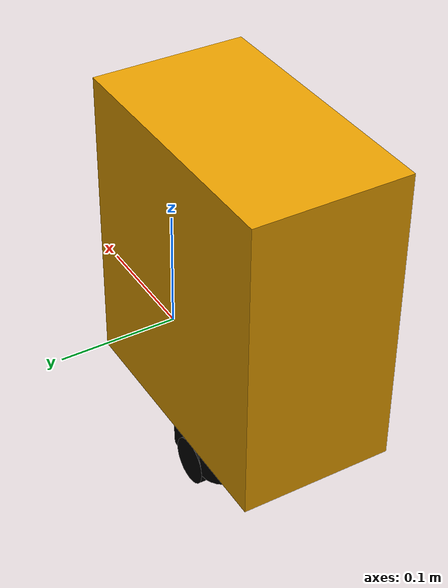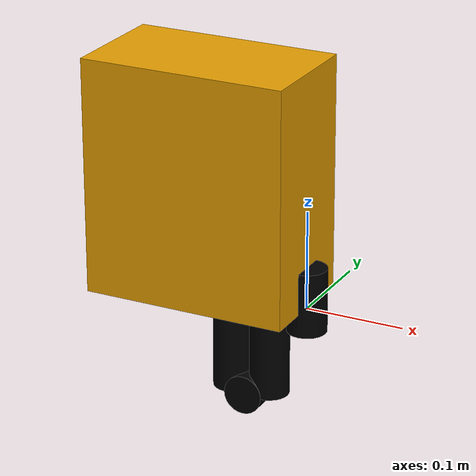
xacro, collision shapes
<?xml version="1.0"?>
<robot name="reach5mini" xmlns:xacro="http://ros.org/wiki/xacro">
  <xacro:arg name="gazebo" default="false"/>
  <xacro:include filename="$(find reach5mini_simulation)/urdf/reach5mini.urdf.xacro" />
  <link name="base_link" >
    <visual>
        <geometry>
            <box size="0.210 0.120 0.240" />
        </geometry>
        <origin rpy="0 0 0" xyz="-0.105 0 0.120" />
    </visual>
    <collision>
      <geometry>
          <box size="0.210 0.120 0.240" />
      </geometry>
      <origin rpy="0 0 0" xyz="-0.105 0 0.120" />
      <surface>
        <friction>
          <ode>
            <mu>0.1</mu>
            <mu2>0.1</mu2>
          </ode>
        </friction>
      </surface>
    </collision>
    <inertial>
        <mass value="5" />
        <origin rpy="0 0 0" xyz="-0.105 0 0.120" />
        <inertia ixx="0.001" ixy="0.00015" ixz="0.0001054" iyy="0.000213" iyz="0.0001003" izz="0.0001067" />
    </inertial>
  </link>

  <reach5mini parent="base_link" name="r5m">
    <origin xyz="0 0 0" rpy="0 0 0"/>
  </reach5mini>
</robot>

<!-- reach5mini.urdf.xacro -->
<robot name="reach5mini" xmlns:xacro="http://ros.org/wiki/xacro">
  <xacro:arg name="gazebo" default="false"/>
  <xacro:arg name="fixed" default="false"/>

  <xacro:if value="$(arg gazebo)">
    <xacro:include filename="$(find reach5mini_simulation)/urdf/reach5mini.gazebo.xacro"/>
  </xacro:if>

  <xacro:macro name="reach5mini" params="parent *origin name:=reach5mini">
    <reach5mini_gazebo name="${name}"/>

    <!-- camera body, with origin at bottom screw mount -->
    <joint name="${name}_joint" type="fixed">
      <xacro:insert_block name="origin" />
      <parent link="${parent}"/>
      <child link="${name}_base_link" />
    </joint>

      <material name="black">
          <color rgba="0 0 0 1" />
      </material>
      <link name="${name}_base_link">
          <visual>
              <geometry>
                  <mesh filename="package://reach5mini_simulation/meshes/Base.stl" />
              </geometry>
              <origin rpy="0 0 0" xyz="0 0 0" />
              <material name="black" />
          </visual>
          <collision>
              <geometry>
                  <cylinder length="0.150" radius="0.020" />
              </geometry>
              <origin rpy="0 1.57075 0" xyz="-0.075 0 0" />
          </collision>

          <inertial>
              <mass value="0.341" />
              <origin xyz="-0.075 -0.006 -0.003" />
              <inertia ixx="0.000099" ixy="0.000139" ixz="0.000115" iyy="0.002920" iyz="0.000003" izz="0.002934" />
          </inertial>

      </link>
      <link name="${name}_shoulder_link">
          <visual>
              <geometry>
                  <mesh filename="package://reach5mini_simulation/meshes/ShoulderJoint.stl" />
              </geometry>
              <material name="black" />
              <origin rpy="0 0 -1.57075" xyz="0 0 0" />
          </visual>
          <collision>
              <geometry>
                  <cylinder length="0.066" radius="0.020" />
              </geometry>
              <origin rpy="0 0 0" xyz="0 0 0.010" />
          </collision>

          <inertial>
              <mass value="0.194" />
              <origin xyz="0.005 -0.001 0.016" />
              <inertia ixx="0.000189" ixy="0.000005" ixz="0.000054" iyy="0.000213" iyz="0.000003" izz="0.000067" />
          </inertial>

      </link>
      <link name="${name}_upper_arm_link">
          <visual>
              <geometry>
                  <mesh filename="package://reach5mini_simulation/meshes/UpperArm.stl" />
              </geometry>
              <origin rpy="0 -1.57075 -0.2655555" xyz="0 0 -0.075" />
              <material name="black" />
          </visual>
          <collision>
              <geometry>
                  <cylinder length="0.145" radius="0.020" />
              </geometry>
              <origin rpy="0 1.57075 -0.27075" xyz="0.075 0 0" />
          </collision>
          <collision>
              <geometry>
                  <cylinder length="0.040" radius="0.020" />
              </geometry>
              <origin rpy="0 0 0" xyz="0 0 0" />
          </collision>
          <inertial>
              <mass value="0.429" />
              <origin xyz="0.073 0.0 0.0" />
              <inertia ixx="0.000087" ixy="-0.000076" ixz="-0.000010" iyy="0.003190" iyz="0.000000" izz="0.003213" />
          </inertial>

      </link>
      <link name="${name}_forearm_link">
          <visual>
              <geometry>
                  <mesh filename="package://reach5mini_simulation/meshes/ForearmJoint.stl" />
              </geometry>
              <origin rpy="0 0 0" xyz="0 0 0" />
              <material name="black" />
          </visual>
          <collision>
              <geometry>
                  <cylinder length="0.040" radius="0.020" />
              </geometry>
              <origin rpy="0 0 0" xyz="0 0 0" />
          </collision>
          <inertial>
              <mass value="0.115" />
              <origin xyz="0.017 -0.026 -0.002" />
              <inertia ixx="0.000120" ixy="-0.000061" ixz="-0.000001" iyy="0.000062" iyz="0.000000" izz="0.000156" />
          </inertial>

      </link>
      <link name="${name}_wrist_link">
          <visual>
              <geometry>
                  <mesh filename="package://reach5mini_simulation/meshes/Wrist.stl" />
              </geometry>
              <origin rpy="0 0 0" xyz="0 0 0" />
              <material name="black" />
          </visual>
          <collision>
              <geometry>
                  <cylinder length="0.140" radius="0.020" />
              </geometry>
              <origin rpy="0 0 0" xyz="0 0 -0.070" />
          </collision>
          <inertial>
              <mass value="0.333" />
              <origin xyz="0.0 0.003 -0.098" />
              <inertia ixx="0.003709" ixy="-0.000002" ixz="-0.000004" iyy="0.003734" iyz="0.000000" izz="0.000079" />
          </inertial>

      </link>
      <link name="${name}_jaw1">
          <visual>
              <geometry>
                  <mesh filename="package://reach5mini_simulation/meshes/Jaw1.stl" />
              </geometry>
              <origin rpy="0 0 0" xyz="0 0 0" />
              <material name="black" />
          </visual>
          <collision>
              <geometry>
                  <box size="0.03 0.09 0.01" />
              </geometry>
              <origin rpy="0 0 0" xyz="-0.01 -0.045 0" />
          </collision>
          <!-- TODO: GET APPROPOATE MASSES - John Sumskas -->
          <inertial>
              <mass value="0.194" />
              <origin xyz="0.005 -0.001 0.016" />
              <inertia ixx="0.000189" ixy="0.000005" ixz="0.000054" iyy="0.000213" iyz="0.000003" izz="0.000067" />
          </inertial>

      </link>
      <link name="${name}_jaw2">
          <visual>
              <geometry>
                  <mesh filename="package://reach5mini_simulation/meshes/Jaw2.stl" />
              </geometry>
              <origin rpy="0 0 0" xyz="0 0 0" />
              <material name="black" />
          </visual>
          <collision>
              <geometry>
                  <box size="0.03 0.09 0.01" />
              </geometry>
              <origin rpy="0 0 0" xyz="0.01 -0.045 0" />
          </collision>
          <!-- TODO: GET APPROPOATE MASSES - John Sumskas -->

          <inertial>
              <mass value="0.194" />
              <origin xyz="0.005 -0.001 0.016" />
              <inertia ixx="0.000189" ixy="0.000005" ixz="0.000054" iyy="0.000213" iyz="0.000003" izz="0.000067" />
          </inertial>
      </link>
      <joint name="${name}_joint1_1" type="revolute">
          <parent link="${name}_wrist_link" />
          <child link="${name}_jaw2" />
          <origin xyz="-0.015 0 -0.140" rpy="1.57075 0 0" />
          <axis xyz="0 0 -1" />
          <limit effort="5.0" lower="0.0" upper="0.5" velocity="0.5" />
      </joint>
      <joint name="${name}_joint1_2" type="revolute">
          <parent link="${name}_wrist_link" />
          <child link="${name}_jaw1" />
          <origin xyz="0.015 0 -0.140" rpy="1.57075 0 0" />
          <axis xyz="0 0 1" />
          <limit effort="5.0" lower="0.0" upper="0.5" velocity="0.5" />
      </joint>

      <joint name="${name}_joint2" type="revolute">
          <parent link="${name}_forearm_link" />
          <child link="${name}_wrist_link" />
          <origin xyz="0.020 0 0" rpy="-1.57075 -0.5 0" />
          <axis xyz="0 0 1" />
          <limit effort="5.0" lower="0.0" upper="6.0" velocity="1.0" />
      </joint>
      <joint name="${name}_joint3" type="revolute">
          <parent link="${name}_upper_arm_link" />
          <child link="${name}_forearm_link" />
          <origin xyz="0.15 0 0" rpy="3.1415 0 1.3" />
          <axis xyz="0 0 1" />
          <limit effort="9.0" lower="0.0" upper="3.5" velocity="0.5" />
      </joint>
      <joint name="${name}_joint4" type="revolute">
          <parent link="${name}_shoulder_link" />
          <child link="${name}_upper_arm_link" />
          <origin xyz="0.020 0 0.046" rpy="1.57075 1.3 0" />
          <axis xyz="0 0 1" />
          <limit effort="9.0" lower="0.0" upper="3.5" velocity="0.5" />
      </joint>
      <joint name="${name}_joint5" type="revolute">
          <parent link="${name}_base_link" />
          <child link="${name}_shoulder_link" />
          <origin xyz="0 0 0" rpy="0 0 3.141592" />
          <axis xyz="0 0 1" />
          <limit effort="9.0" lower="0.0" upper="6.2" velocity="0.5" />
      </joint>

      <link name="${name}_jaw"/>

      <joint name="${name}_joint_jaw" type="fixed">
          <parent link="${name}_wrist_link" />
          <child link="${name}_jaw" />
          <origin xyz="0 0 -0.190" rpy="0 0 1.5707" />
      </joint>

    </xacro:macro>
</robot>
